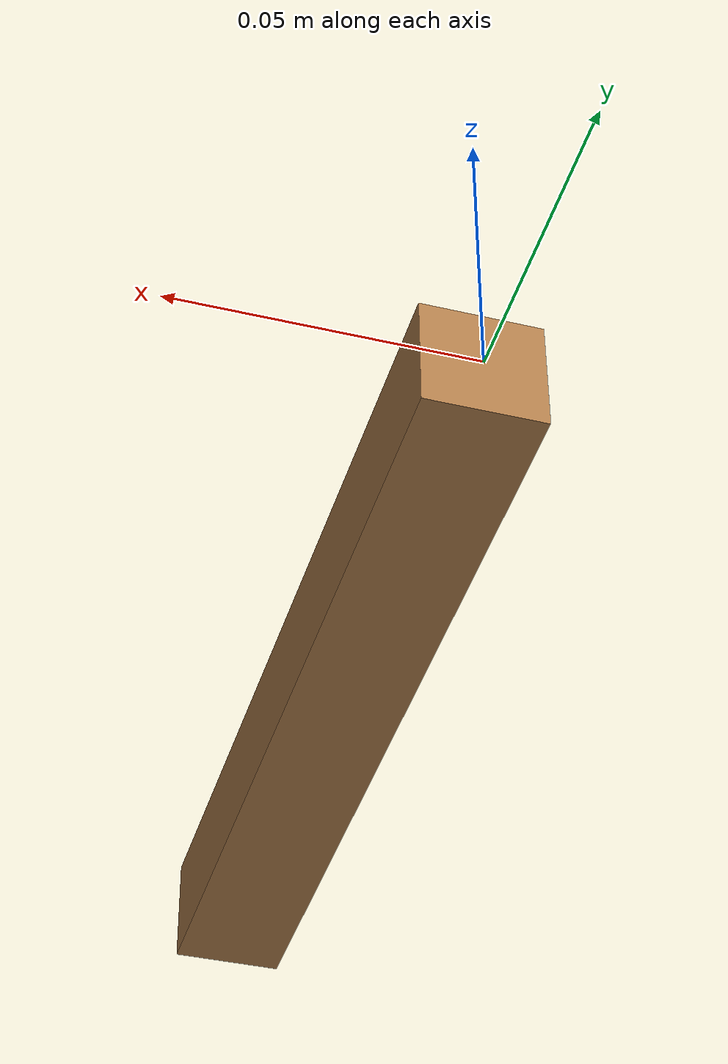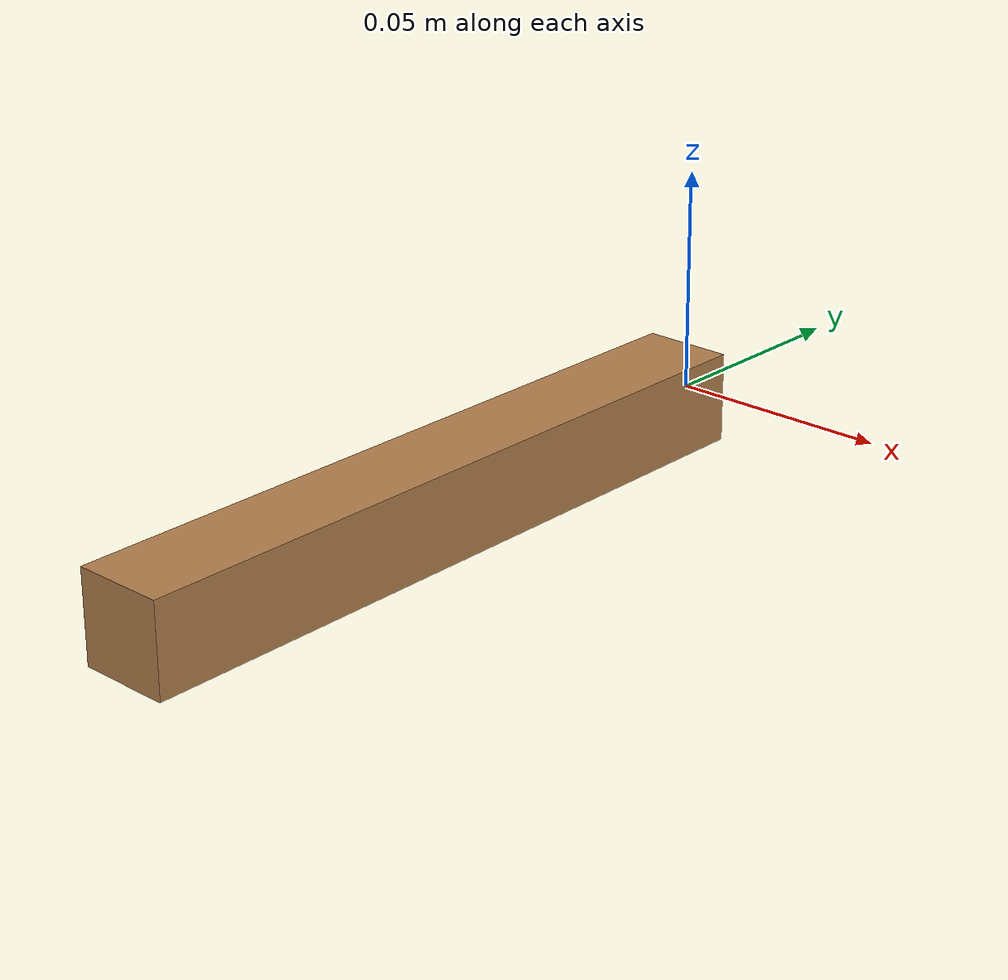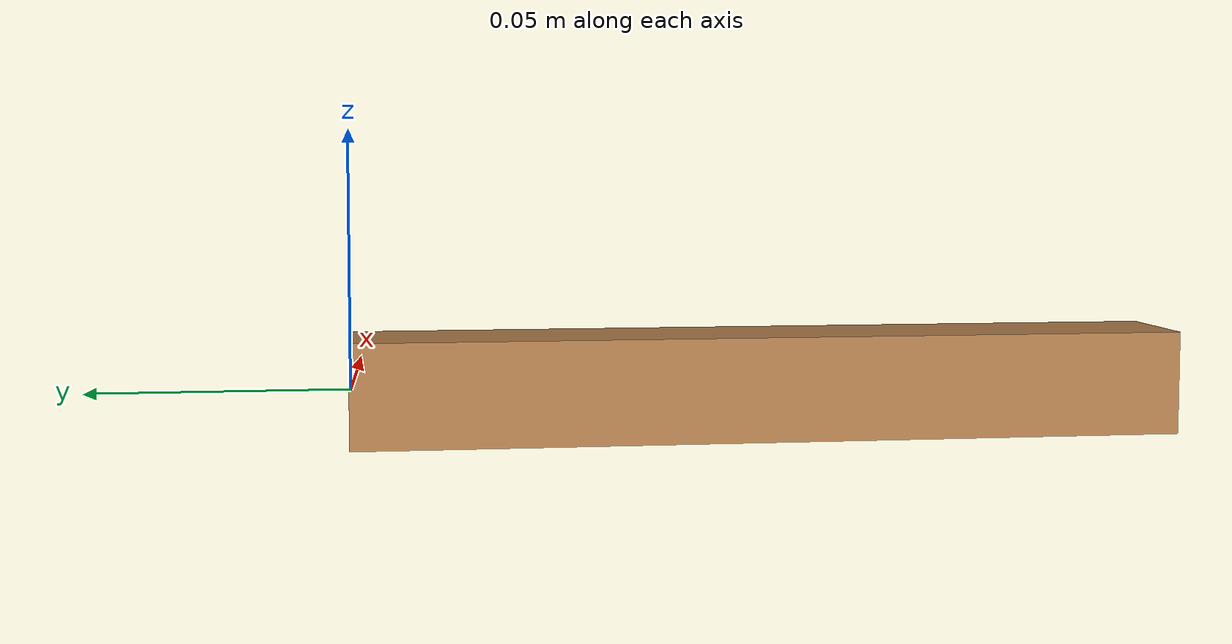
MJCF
<mujoco model="fake-spoon">
  <asset>
  <texture file="./meshes/wood.png" name="tex-wood" type="2d" />
  <material name="wood" reflectance="0.5" texrepeat="1 1" texture="tex-wood" texuniform="false" />
  <mesh file="./fake-spoon.stl" name="spoon" scale="0.8 0.8 0.8" /></asset>
  <worldbody>
    <body>
      <body name="object">
      <geom solimp="0.998 0.998 0.001" solref="0.001 1" density="100" friction="1.95 1.2 0.1" type="mesh" mesh="spoon" conaffinity="0" contype="1" group="1" material="wood" pos="0.00000 0.00000 -0.00000" quat="0.707 0.70700 0.0000 0.00000"/>
      <geom solimp="0.998 0.998 0.001" solref="0.001 1" density="100" friction="1.95 1.2 0.1" type="mesh" mesh="spoon" pos="0.00000 0.00000 -0.00000" quat="0.707 0.70700 0.0000 0.00000" size="0.2 0.02 0.02" group="0"/></body>
      <site rgba="0 0 0 0" size="0.005" pos="0 0 -0.02" name="bottom_site" />
      <site rgba="0 0 0 0" size="0.005" pos="0 0 0.02" name="top_site" />
      <site rgba="0 0 0 0" size="0.005" pos="0.02 0.02 0" name="horizontal_radius_site" />
    </body>
  </worldbody>
</mujoco>
